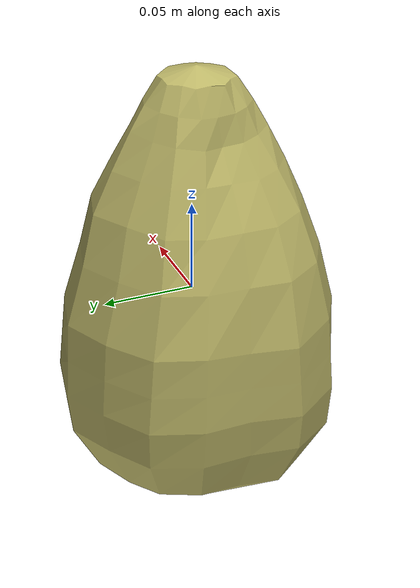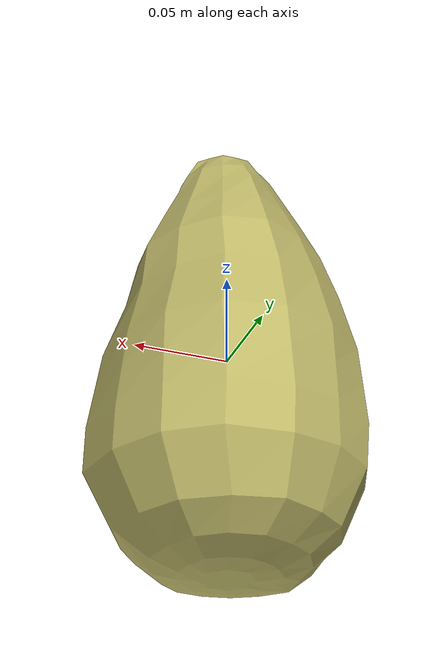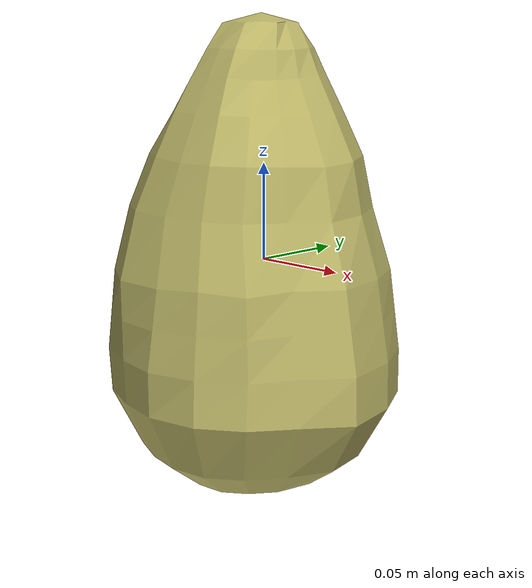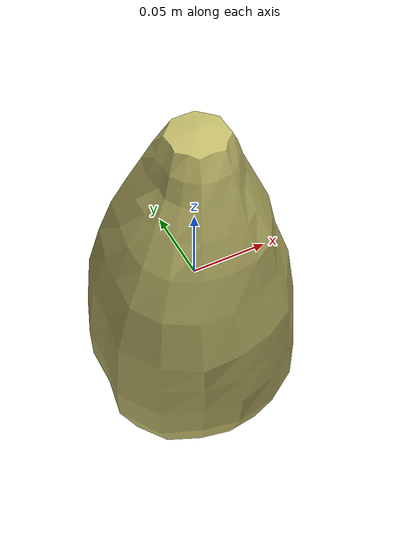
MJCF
<mujoco model="Lettuce_1">
  <compiler autolimits="true" boundmass="0.01" angle="radian"/>
  <default>
    <default class="/">
      <default class="__VISUAL_MJT__">
        <geom contype="0" conaffinity="0" group="0"/>
      </default>
      <default class="__STRUCTURAL_MJT__">
        <geom contype="8" conaffinity="15" group="4" friction="0.90000000000000002 0.90000000000000002 0.001" solref="0.025000000000000001 1" solimp="0.998 0.998 0.001"/>
      </default>
      <default class="__DYNAMIC_MJT__">
        <geom contype="1" conaffinity="15" group="4" friction="0.90000000000000002 0.90000000000000002 0.001" solref="0.025000000000000001 1" solimp="0.998 0.998 0.001"/>
      </default>
    </default>
  </default>
  <asset>
    <texture name="Lettuce1_Mat" type="2d" file="Lettuce1_AlbedoTransparency.png"/>
    <material name="material_Lettuce1_Mat" class="/" texture="Lettuce1_Mat" specular="0.5" shininess="0.5" rgba="0.9945233 1 0.60294119999999995 1"/>
    <mesh name="Lettuce_1_lettuce_a1" class="/" file="Lettuce_1_lettuce_a1/Lettuce_1_lettuce_a1.obj" scale="1 1 1"/>
  </asset>
  <worldbody>
    <body name="Lettuce_1">
      <joint name="Lettuce_1_free" class="/" type="free" pos="0 0 0" axis="0 0 1" stiffness="0" range="0 0" armature="0" damping="0.10000000000000001" frictionloss="0"/>
      <body name="Lettuce_1_lettuce_a1" pos="-0 0 0.0028800000000000002" quat="1 0 0 0">
        <geom name="Lettuce_1_lettuce_a1" class="__VISUAL_MJT__" type="mesh" material="material_Lettuce1_Mat" shellinertia="true" mesh="Lettuce_1_lettuce_a1"/>
        <geom name="Lettuce_1_PrimitiveCollider_0" class="__DYNAMIC_MJT__" type="capsule" size="0.073747970163822174 0.025537244975566864" rgba="0 1 0 1" pos="-0 8.5681676864624023e-08 -0.029541701078414917" quat="0.99999999999891198 1.4751396607739272e-06 0 0"/>
        <geom name="Lettuce_1_PrimitiveCollider_1" class="__DYNAMIC_MJT__" type="capsule" size="0.051602676510810852 0.01339595764875412" rgba="0 1 0 1" pos="-0 0.00010013410792453215 0.058070391416549683" quat="0.99999999999891198 1.4751396607739272e-06 0 0"/>
      </body>
    </body>
  </worldbody>
</mujoco>
